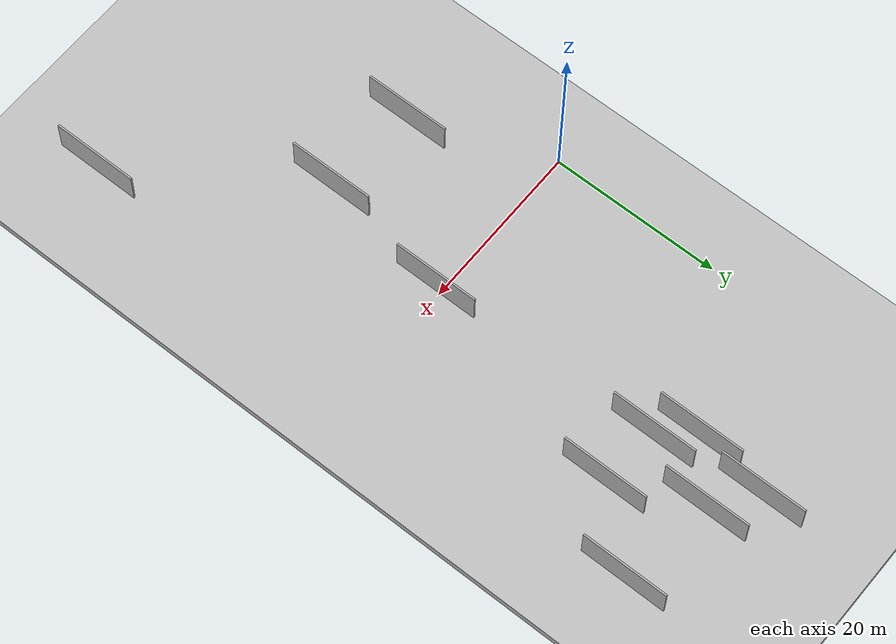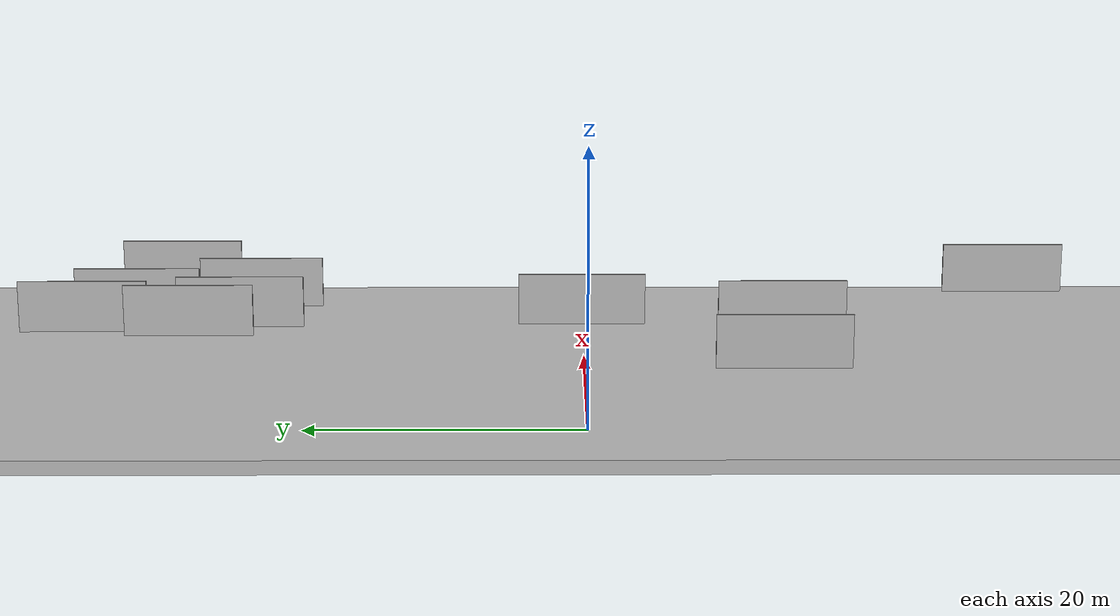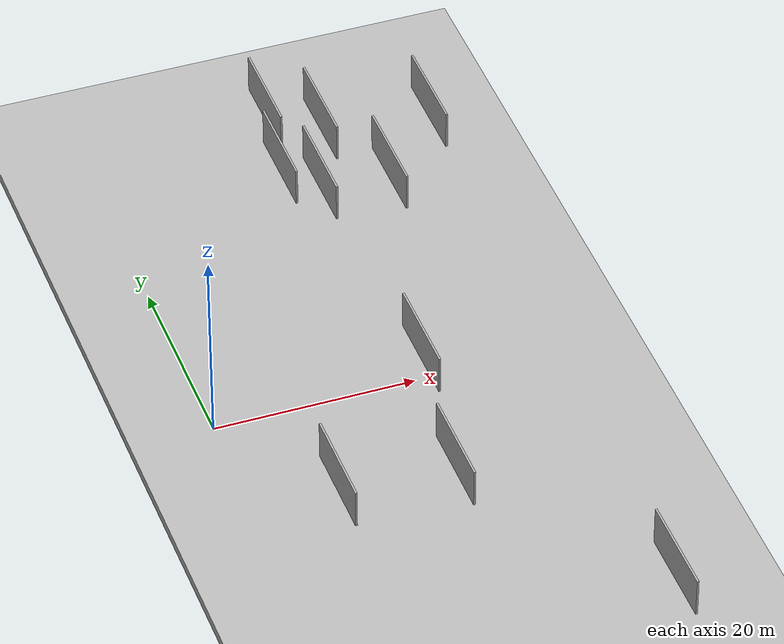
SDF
<?xml version="1.0" encoding="utf-8"?>

<sdf version="1.6">

   <world name="default">

      <gui fullscreen="0">

         <camera name="user_camera">

            <pose>-15 0 4.57585 0 0 0</pose>

            <view_controller>orbit</view_controller>

         </camera>

      </gui>

      <scene>

         <sky>

           <clouds>

             <speed>12</speed>

           </clouds>

         </sky>

         <ambient>0.4 0.4 0.4 1</ambient>

         <background>0.7 0.7 0.7 1</background>

         <shadows>1</shadows>

      </scene>

      <gravity>0 0 -9.8066</gravity>

      <magnetic_field>6e-06 2.3e-05 -4.2e-05</magnetic_field>

      <physics default="0" name="default_physics" type="ode">

         <ode>

            <solver>

               <type>quick</type>

               <iters>10</iters>

               <sor>1.0</sor>

               <use_dynamic_moi_rescaling>0</use_dynamic_moi_rescaling>

            </solver>

            <constraints>

               <cfm>0</cfm>

               <erp>0.2</erp>

               <contact_max_correcting_vel>100</contact_max_correcting_vel>

               <contact_surface_layer>0.001</contact_surface_layer>

            </constraints>

         </ode>

         <max_step_size>0.004</max_step_size>

         <real_time_factor>1</real_time_factor>

         <real_time_update_rate>250</real_time_update_rate>

      </physics>

      <light name="sun" type="directional">

         <cast_shadows>1</cast_shadows>

         <pose>0 0 10 0 0 0</pose>

         <diffuse>0.8 0.8 0.8 1</diffuse>

         <specular>0.2 0.2 0.2 1</specular>

         <attenuation>

            <range>1000</range>

            <constant>0.9</constant>

            <linear>0.01</linear>

            <quadratic>0.001</quadratic>

         </attenuation>

         <direction>-0.5 0.1 -0.9</direction>

      </light>

      <include>

         <name>ground_plane_1</name>

         <uri>model://HANNAS_ground_plane</uri>

         <pose>0 0 0  0 0 0</pose>

      </include>

      <include>

         <name>ground_plane_2</name>

         <uri>model://HANNAS_ground_plane</uri>

         <pose>100 0 0  0 0 0</pose>

      </include>

      <model name="HANNAS_wall_1">

         <static>1</static>

         <pose frame="">33.7402 33.9486 2.5 0.000000 0.000000 1.570796</pose>

         <link name="link">

            <pose frame="">0 0 2.00 0 0 0</pose>

            <collision name="collision">

               <geometry>

                  <box>

                     <size>10.00 0.2 4.00</size>

                  </box>

               </geometry>

               <max_contacts>10</max_contacts>

               <surface>

                  <contact>

                     <ode/>

                  </contact>

                  <bounce/>

                  <friction>

                     <torsional>

                        <ode/>

                     </torsional>

                     <ode/>

                  </friction>

               </surface>

            </collision>

            <visual name="visual">

               <cast_shadows>0</cast_shadows>

               <geometry>

                  <box>

                     <size>10.00 0.2 4.00</size>

                  </box>

               </geometry>

               <material>

                  <script>

                     <uri>model://HANNAS_wall/materials/scripts</uri>

                     <uri>model://HANNAS_wall/materials/textures</uri>

                     <name>vrc/HANNAS_wall</name>

                  </script>

               </material>

            </visual>

            <self_collide>0</self_collide>

            <enable_wind>0</enable_wind>

            <kinematic>0</kinematic>

         </link>

      </model>

      <model name="HANNAS_wall_2">

         <static>1</static>

         <pose frame="">26.8600 26.3075 2.5 0.000000 0.000000 1.570796</pose>

         <link name="link">

            <pose frame="">0 0 2.00 0 0 0</pose>

            <collision name="collision">

               <geometry>

                  <box>

                     <size>10.00 0.2 4.00</size>

                  </box>

               </geometry>

               <max_contacts>10</max_contacts>

               <surface>

                  <contact>

                     <ode/>

                  </contact>

                  <bounce/>

                  <friction>

                     <torsional>

                        <ode/>

                     </torsional>

                     <ode/>

                  </friction>

               </surface>

            </collision>

            <visual name="visual">

               <cast_shadows>0</cast_shadows>

               <geometry>

                  <box>

                     <size>10.00 0.2 4.00</size>

                  </box>

               </geometry>

               <material>

                  <script>

                     <uri>model://HANNAS_wall/materials/scripts</uri>

                     <uri>model://HANNAS_wall/materials/textures</uri>

                     <name>vrc/HANNAS_wall</name>

                  </script>

               </material>

            </visual>

            <self_collide>0</self_collide>

            <enable_wind>0</enable_wind>

            <kinematic>0</kinematic>

         </link>

      </model>

      <model name="HANNAS_wall_3">

         <static>1</static>

         <pose frame="">18.3426 -15.4577 2.5 0.000000 0.000000 1.570796</pose>

         <link name="link">

            <pose frame="">0 0 2.00 0 0 0</pose>

            <collision name="collision">

               <geometry>

                  <box>

                     <size>10.00 0.2 4.00</size>

                  </box>

               </geometry>

               <max_contacts>10</max_contacts>

               <surface>

                  <contact>

                     <ode/>

                  </contact>

                  <bounce/>

                  <friction>

                     <torsional>

                        <ode/>

                     </torsional>

                     <ode/>

                  </friction>

               </surface>

            </collision>

            <visual name="visual">

               <cast_shadows>0</cast_shadows>

               <geometry>

                  <box>

                     <size>10.00 0.2 4.00</size>

                  </box>

               </geometry>

               <material>

                  <script>

                     <uri>model://HANNAS_wall/materials/scripts</uri>

                     <uri>model://HANNAS_wall/materials/textures</uri>

                     <name>vrc/HANNAS_wall</name>

                  </script>

               </material>

            </visual>

            <self_collide>0</self_collide>

            <enable_wind>0</enable_wind>

            <kinematic>0</kinematic>

         </link>

      </model>

      <model name="HANNAS_wall_4">

         <static>1</static>

         <pose frame="">31.9748 -35.5067 2.5 0.000000 0.000000 1.570796</pose>

         <link name="link">

            <pose frame="">0 0 2.00 0 0 0</pose>

            <collision name="collision">

               <geometry>

                  <box>

                     <size>10.00 0.2 4.00</size>

                  </box>

               </geometry>

               <max_contacts>10</max_contacts>

               <surface>

                  <contact>

                     <ode/>

                  </contact>

                  <bounce/>

                  <friction>

                     <torsional>

                        <ode/>

                     </torsional>

                     <ode/>

                  </friction>

               </surface>

            </collision>

            <visual name="visual">

               <cast_shadows>0</cast_shadows>

               <geometry>

                  <box>

                     <size>10.00 0.2 4.00</size>

                  </box>

               </geometry>

               <material>

                  <script>

                     <uri>model://HANNAS_wall/materials/scripts</uri>

                     <uri>model://HANNAS_wall/materials/textures</uri>

                     <name>vrc/HANNAS_wall</name>

                  </script>

               </material>

            </visual>

            <self_collide>0</self_collide>

            <enable_wind>0</enable_wind>

            <kinematic>0</kinematic>

         </link>

      </model>

      <model name="HANNAS_wall_5">

         <static>1</static>

         <pose frame="">17.0528 30.6622 2.5 0.000000 0.000000 1.570796</pose>

         <link name="link">

            <pose frame="">0 0 2.00 0 0 0</pose>

            <collision name="collision">

               <geometry>

                  <box>

                     <size>10.00 0.2 4.00</size>

                  </box>

               </geometry>

               <max_contacts>10</max_contacts>

               <surface>

                  <contact>

                     <ode/>

                  </contact>

                  <bounce/>

                  <friction>

                     <torsional>

                        <ode/>

                     </torsional>

                     <ode/>

                  </friction>

               </surface>

            </collision>

            <visual name="visual">

               <cast_shadows>0</cast_shadows>

               <geometry>

                  <box>

                     <size>10.00 0.2 4.00</size>

                  </box>

               </geometry>

               <material>

                  <script>

                     <uri>model://HANNAS_wall/materials/scripts</uri>

                     <uri>model://HANNAS_wall/materials/textures</uri>

                     <name>vrc/HANNAS_wall</name>

                  </script>

               </material>

            </visual>

            <self_collide>0</self_collide>

            <enable_wind>0</enable_wind>

            <kinematic>0</kinematic>

         </link>

      </model>

      <model name="HANNAS_wall_6">

         <static>1</static>

         <pose frame="">20.6767 0.1733 2.5 0.000000 0.000000 1.570796</pose>

         <link name="link">

            <pose frame="">0 0 2.00 0 0 0</pose>

            <collision name="collision">

               <geometry>

                  <box>

                     <size>10.00 0.2 4.00</size>

                  </box>

               </geometry>

               <max_contacts>10</max_contacts>

               <surface>

                  <contact>

                     <ode/>

                  </contact>

                  <bounce/>

                  <friction>

                     <torsional>

                        <ode/>

                     </torsional>

                     <ode/>

                  </friction>

               </surface>

            </collision>

            <visual name="visual">

               <cast_shadows>0</cast_shadows>

               <geometry>

                  <box>

                     <size>10.00 0.2 4.00</size>

                  </box>

               </geometry>

               <material>

                  <script>

                     <uri>model://HANNAS_wall/materials/scripts</uri>

                     <uri>model://HANNAS_wall/materials/textures</uri>

                     <name>vrc/HANNAS_wall</name>

                  </script>

               </material>

            </visual>

            <self_collide>0</self_collide>

            <enable_wind>0</enable_wind>

            <kinematic>0</kinematic>

         </link>

      </model>

      <model name="HANNAS_wall_7">

         <static>1</static>

         <pose frame="">18.3615 39.1076 2.5 0.000000 0.000000 1.570796</pose>

         <link name="link">

            <pose frame="">0 0 2.00 0 0 0</pose>

            <collision name="collision">

               <geometry>

                  <box>

                     <size>10.00 0.2 4.00</size>

                  </box>

               </geometry>

               <max_contacts>10</max_contacts>

               <surface>

                  <contact>

                     <ode/>

                  </contact>

                  <bounce/>

                  <friction>

                     <torsional>

                        <ode/>

                     </torsional>

                     <ode/>

                  </friction>

               </surface>

            </collision>

            <visual name="visual">

               <cast_shadows>0</cast_shadows>

               <geometry>

                  <box>

                     <size>10.00 0.2 4.00</size>

                  </box>

               </geometry>

               <material>

                  <script>

                     <uri>model://HANNAS_wall/materials/scripts</uri>

                     <uri>model://HANNAS_wall/materials/textures</uri>

                     <name>vrc/HANNAS_wall</name>

                  </script>

               </material>

            </visual>

            <self_collide>0</self_collide>

            <enable_wind>0</enable_wind>

            <kinematic>0</kinematic>

         </link>

      </model>

      <model name="HANNAS_wall_8">

         <static>1</static>

         <pose frame="">22.9904 35.7455 2.5 0.000000 0.000000 1.570796</pose>

         <link name="link">

            <pose frame="">0 0 2.00 0 0 0</pose>

            <collision name="collision">

               <geometry>

                  <box>

                     <size>10.00 0.2 4.00</size>

                  </box>

               </geometry>

               <max_contacts>10</max_contacts>

               <surface>

                  <contact>

                     <ode/>

                  </contact>

                  <bounce/>

                  <friction>

                     <torsional>

                        <ode/>

                     </torsional>

                     <ode/>

                  </friction>

               </surface>

            </collision>

            <visual name="visual">

               <cast_shadows>0</cast_shadows>

               <geometry>

                  <box>

                     <size>10.00 0.2 4.00</size>

                  </box>

               </geometry>

               <material>

                  <script>

                     <uri>model://HANNAS_wall/materials/scripts</uri>

                     <uri>model://HANNAS_wall/materials/textures</uri>

                     <name>vrc/HANNAS_wall</name>

                  </script>

               </material>

            </visual>

            <self_collide>0</self_collide>

            <enable_wind>0</enable_wind>

            <kinematic>0</kinematic>

         </link>

      </model>

      <model name="HANNAS_wall_9">

         <static>1</static>

         <pose frame="">7.3101 -14.4348 2.5 0.000000 0.000000 1.570796</pose>

         <link name="link">

            <pose frame="">0 0 2.00 0 0 0</pose>

            <collision name="collision">

               <geometry>

                  <box>

                     <size>10.00 0.2 4.00</size>

                  </box>

               </geometry>

               <max_contacts>10</max_contacts>

               <surface>

                  <contact>

                     <ode/>

                  </contact>

                  <bounce/>

                  <friction>

                     <torsional>

                        <ode/>

                     </torsional>

                     <ode/>

                  </friction>

               </surface>

            </collision>

            <visual name="visual">

               <cast_shadows>0</cast_shadows>

               <geometry>

                  <box>

                     <size>10.00 0.2 4.00</size>

                  </box>

               </geometry>

               <material>

                  <script>

                     <uri>model://HANNAS_wall/materials/scripts</uri>

                     <uri>model://HANNAS_wall/materials/textures</uri>

                     <name>vrc/HANNAS_wall</name>

                  </script>

               </material>

            </visual>

            <self_collide>0</self_collide>

            <enable_wind>0</enable_wind>

            <kinematic>0</kinematic>

         </link>

      </model>

      <model name="HANNAS_wall_10">

         <static>1</static>

         <pose frame="">19.9562 27.0852 2.5 0.000000 0.000000 1.570796</pose>

         <link name="link">

            <pose frame="">0 0 2.00 0 0 0</pose>

            <collision name="collision">

               <geometry>

                  <box>

                     <size>10.00 0.2 4.00</size>

                  </box>

               </geometry>

               <max_contacts>10</max_contacts>

               <surface>

                  <contact>

                     <ode/>

                  </contact>

                  <bounce/>

                  <friction>

                     <torsional>

                        <ode/>

                     </torsional>

                     <ode/>

                  </friction>

               </surface>

            </collision>

            <visual name="visual">

               <cast_shadows>0</cast_shadows>

               <geometry>

                  <box>

                     <size>10.00 0.2 4.00</size>

                  </box>

               </geometry>

               <material>

                  <script>

                     <uri>model://HANNAS_wall/materials/scripts</uri>

                     <uri>model://HANNAS_wall/materials/textures</uri>

                     <name>vrc/HANNAS_wall</name>

                  </script>

               </material>

            </visual>

            <self_collide>0</self_collide>

            <enable_wind>0</enable_wind>

            <kinematic>0</kinematic>

         </link>

      </model>

   </world>

</sdf>

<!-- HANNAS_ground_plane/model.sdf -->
<sdf version="1.4">
<model name="HANNAS_ground_plane">
  <static>true</static>
    <link name="link">
      <collision name="collision">
        <geometry>
          <plane>
            <normal>0 0 1</normal>
            <size>1000 1000</size>
          </plane>
        </geometry>
        <surface>
          <friction>
            <ode>
              <mu>100</mu>
              <mu2>50</mu2>
            </ode>
          </friction>
        </surface>
      </collision>
      <visual name="visual">
        <cast_shadows>false</cast_shadows>
        <geometry>
          <plane>
            <normal>0 0 1</normal>
            <size>1000 1000</size>
          </plane>
        </geometry>
        <material>
          <script>
            <uri>model://HANNAS_ground_plane/materials/scripts/HANNAS_ground_plane.material</uri>
	    <uri>model://HANNAS_ground_plane/materials/textures</uri>
            <name>HANNASGroundPlane/Image</name>
          </script>
        </material>
      </visual>
    </link>
  </model>
</sdf>
